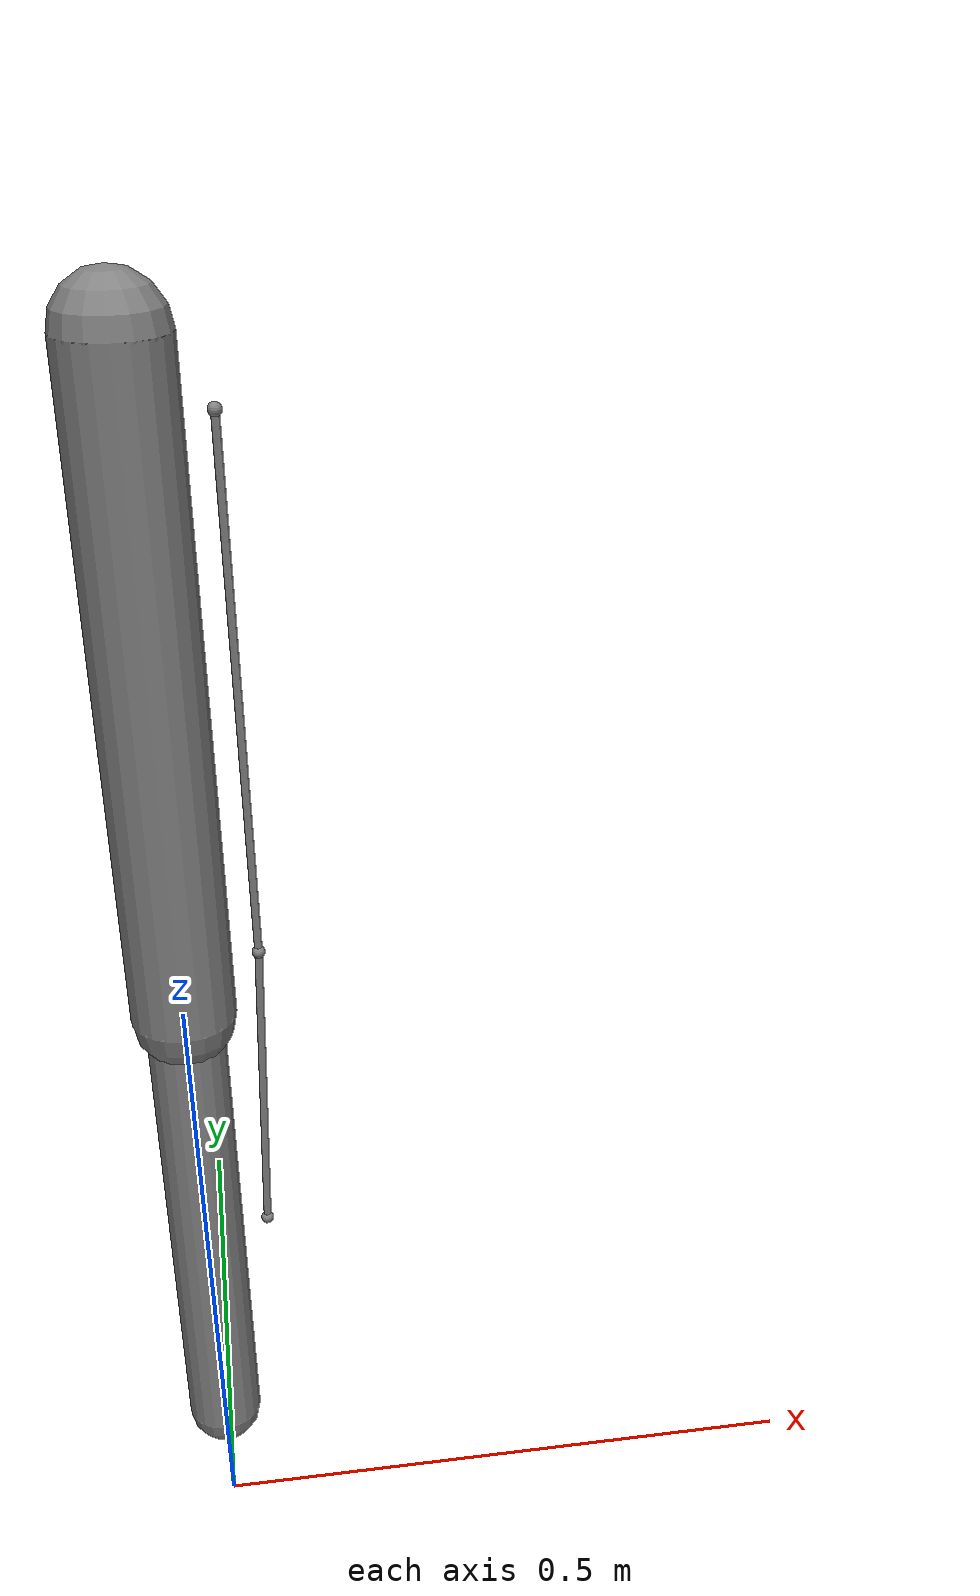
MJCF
<mujoco model="spatial-tendon">
  <option gravity="0 0 -9.81" timestep="0.002"/>
  <compiler angle="radian"/>
  <worldbody>
    <body name="upper" pos="0 0 1">
      <joint name="shoulder" type="hinge" axis="0 1 0"/>
      <geom type="capsule" size="0.04" fromto="0 0 0 0 0 -0.5" mass="1.0"/>
      <site name="s1" pos="0.06 0 -0.05"/>
      <site name="s2" pos="0.06 0 -0.45"/>
      <body name="lower" pos="0 0 -0.5">
        <joint name="elbow" type="hinge" axis="0 1 0"/>
        <geom type="capsule" size="0.03" fromto="0 0 0 0 0 -0.4" mass="0.5"/>
        <site name="s3" pos="0.05 0 -0.2"/>
      </body>
    </body>
  </worldbody>
  <tendon>
    <spatial name="t1">
      <site site="s1"/>
      <site site="s2"/>
      <site site="s3"/>
    </spatial>
  </tendon>
</mujoco>
